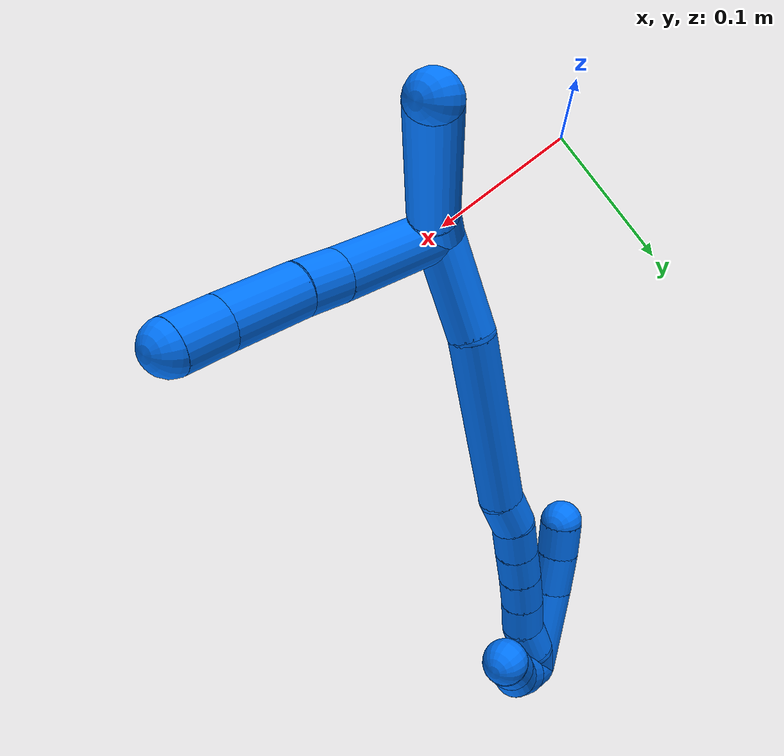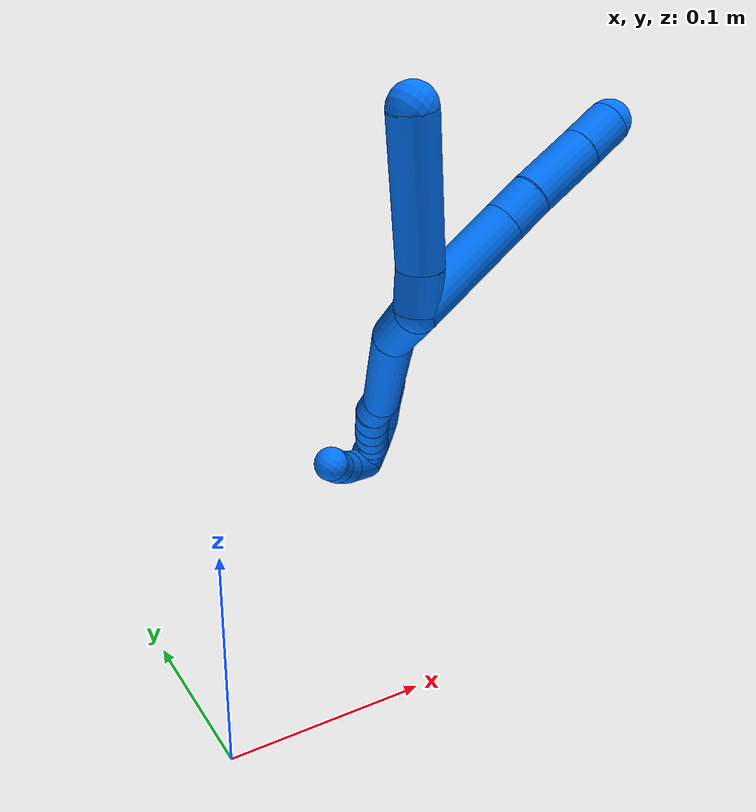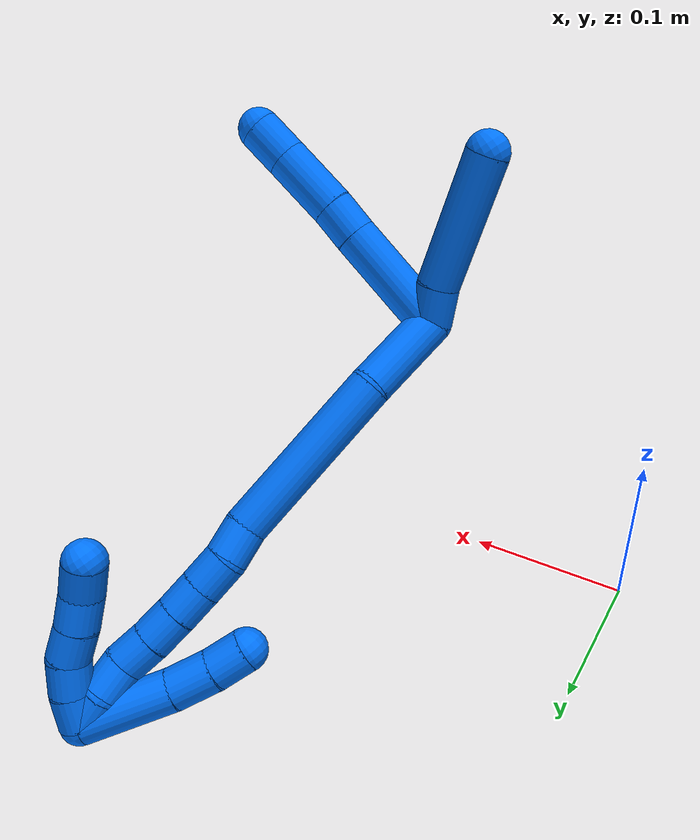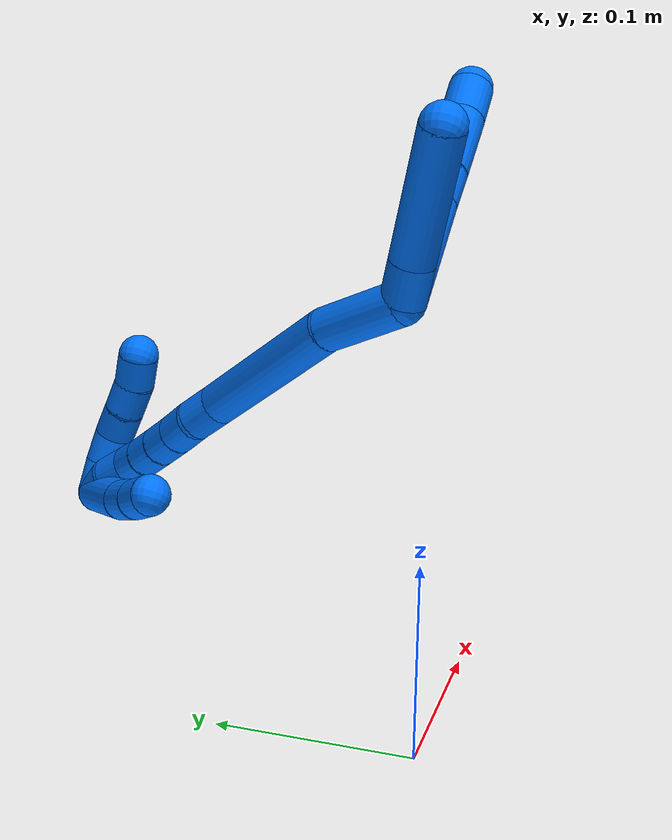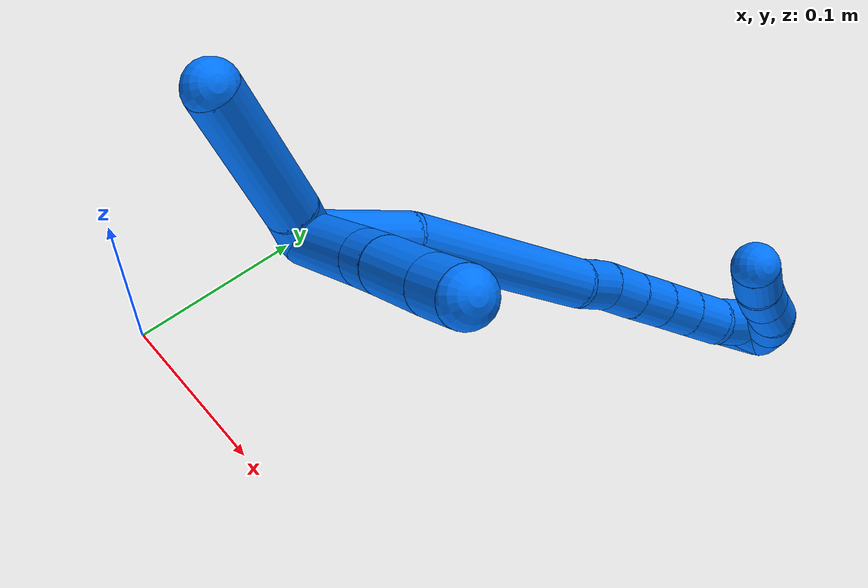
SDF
<sdf version="1.7">
 <world name="default">
  <model name="14">
   <static>0</static>
   <link name="14">
    <collision name="collision-cylinder-e_1_2_8">
     <pose>0.006449 -0.000491 0.03241 0.015137 0.196402 0.001491</pose>
     <geometry><cylinder><radius>0.0125</radius><length>0.066097</length></cylinder></geometry>
     <surface>
      <friction><ode><mu>1.16</mu><mu2>1.16</mu2><slip1>0</slip1><slip2>0</slip2></ode></friction>
      <contact><ode><kp>1e+06</kp><kd>1</kd><max_vel>0</max_vel><min_depth>0.001</min_depth></ode></contact>
     </surface>
    </collision>
    <visual name="visual-cylinder-e_1_2_8">
     <pose>0.006449 -0.000491 0.03241 0.015137 0.196402 0.001491</pose>
     <geometry><cylinder><radius>0.0125</radius><length>0.066097</length></cylinder></geometry>
     <material><ambient>0 0.462745 1 1</ambient></material>
    </visual>
    <collision name="collision-cylinder-e_2_8_9">
     <pose>0.014785 -0.001428 0.075341 0.042482 0.177281 0.003776</pose>
     <geometry><cylinder><radius>0.0125</radius><length>0.021398</length></cylinder></geometry>
     <surface>
      <friction><ode><mu>1.16</mu><mu2>1.16</mu2><slip1>0</slip1><slip2>0</slip2></ode></friction>
      <contact><ode><kp>1e+06</kp><kd>1</kd><max_vel>0</max_vel><min_depth>0.001</min_depth></ode></contact>
     </surface>
    </collision>
    <visual name="visual-cylinder-e_2_8_9">
     <pose>0.014785 -0.001428 0.075341 0.042482 0.177281 0.003776</pose>
     <geometry><cylinder><radius>0.0125</radius><length>0.021398</length></cylinder></geometry>
     <material><ambient>0 0.462745 1 1</ambient></material>
    </visual>
    <collision name="collision-cylinder-e_3_9_10">
     <pose>0.021309 -0.00211 0.104816 0.012351 0.239934 0.001489</pose>
     <geometry><cylinder><radius>0.0125</radius><length>0.039028</length></cylinder></geometry>
     <surface>
      <friction><ode><mu>1.16</mu><mu2>1.16</mu2><slip1>0</slip1><slip2>0</slip2></ode></friction>
      <contact><ode><kp>1e+06</kp><kd>1</kd><max_vel>0</max_vel><min_depth>0.001</min_depth></ode></contact>
     </surface>
    </collision>
    <visual name="visual-cylinder-e_3_9_10">
     <pose>0.021309 -0.00211 0.104816 0.012351 0.239934 0.001489</pose>
     <geometry><cylinder><radius>0.0125</radius><length>0.039028</length></cylinder></geometry>
     <material><ambient>0 0.462745 1 1</ambient></material>
    </visual>
    <collision name="collision-cylinder-e_4_10_6">
     <pose>0.028661 -0.002228 0.135189 -0.010186 0.233337 -0.001194</pose>
     <geometry><cylinder><radius>0.0125</radius><length>0.023477</length></cylinder></geometry>
     <surface>
      <friction><ode><mu>1.16</mu><mu2>1.16</mu2><slip1>0</slip1><slip2>0</slip2></ode></friction>
      <contact><ode><kp>1e+06</kp><kd>1</kd><max_vel>0</max_vel><min_depth>0.001</min_depth></ode></contact>
     </surface>
    </collision>
    <visual name="visual-cylinder-e_4_10_6">
     <pose>0.028661 -0.002228 0.135189 -0.010186 0.233337 -0.001194</pose>
     <geometry><cylinder><radius>0.0125</radius><length>0.023477</length></cylinder></geometry>
     <material><ambient>0 0.462745 1 1</ambient></material>
    </visual>
    <collision name="collision-cylinder-e_1_2_11">
     <pose>-0.007847 -0.00176 0.008193 0.211616 -0.75253 -0.083871</pose>
     <geometry><cylinder><radius>0.0125</radius><length>0.022961</length></cylinder></geometry>
     <surface>
      <friction><ode><mu>1.16</mu><mu2>1.16</mu2><slip1>0</slip1><slip2>0</slip2></ode></friction>
      <contact><ode><kp>1e+06</kp><kd>1</kd><max_vel>0</max_vel><min_depth>0.001</min_depth></ode></contact>
     </surface>
    </collision>
    <visual name="visual-cylinder-e_1_2_11">
     <pose>-0.007847 -0.00176 0.008193 0.211616 -0.75253 -0.083871</pose>
     <geometry><cylinder><radius>0.0125</radius><length>0.022961</length></cylinder></geometry>
     <material><ambient>0 0.462745 1 1</ambient></material>
    </visual>
    <collision name="collision-cylinder-e_2_11_5">
     <pose>-0.045805 -0.010268 0.039441 0.284736 -0.897427 -0.137807</pose>
     <geometry><cylinder><radius>0.0125</radius><length>0.077039</length></cylinder></geometry>
     <surface>
      <friction><ode><mu>1.16</mu><mu2>1.16</mu2><slip1>0</slip1><slip2>0</slip2></ode></friction>
      <contact><ode><kp>1e+06</kp><kd>1</kd><max_vel>0</max_vel><min_depth>0.001</min_depth></ode></contact>
     </surface>
    </collision>
    <visual name="visual-cylinder-e_2_11_5">
     <pose>-0.045805 -0.010268 0.039441 0.284736 -0.897427 -0.137807</pose>
     <geometry><cylinder><radius>0.0125</radius><length>0.077039</length></cylinder></geometry>
     <material><ambient>0 0.462745 1 1</ambient></material>
    </visual>
    <collision name="collision-cylinder-e_1_2_12">
     <pose>0.013767 0.021968 -0.005176 -1.80218 0.54773 -0.681893</pose>
     <geometry><cylinder><radius>0.0125</radius><length>0.052873</length></cylinder></geometry>
     <surface>
      <friction><ode><mu>1.16</mu><mu2>1.16</mu2><slip1>0</slip1><slip2>0</slip2></ode></friction>
      <contact><ode><kp>1e+06</kp><kd>1</kd><max_vel>0</max_vel><min_depth>0.001</min_depth></ode></contact>
     </surface>
    </collision>
    <visual name="visual-cylinder-e_1_2_12">
     <pose>0.013767 0.021968 -0.005176 -1.80218 0.54773 -0.681893</pose>
     <geometry><cylinder><radius>0.0125</radius><length>0.052873</length></cylinder></geometry>
     <material><ambient>0 0.462745 1 1</ambient></material>
    </visual>
    <collision name="collision-cylinder-e_2_12_13">
     <pose>0.063164 0.079866 -0.024232 -1.93945 0.746456 -1.03774</pose>
     <geometry><cylinder><radius>0.0125</radius><length>0.104942</length></cylinder></geometry>
     <surface>
      <friction><ode><mu>1.16</mu><mu2>1.16</mu2><slip1>0</slip1><slip2>0</slip2></ode></friction>
      <contact><ode><kp>1e+06</kp><kd>1</kd><max_vel>0</max_vel><min_depth>0.001</min_depth></ode></contact>
     </surface>
    </collision>
    <visual name="visual-cylinder-e_2_12_13">
     <pose>0.063164 0.079866 -0.024232 -1.93945 0.746456 -1.03774</pose>
     <geometry><cylinder><radius>0.0125</radius><length>0.104942</length></cylinder></geometry>
     <material><ambient>0 0.462745 1 1</ambient></material>
    </visual>
    <collision name="collision-cylinder-e_3_13_14">
     <pose>0.104388 0.12355 -0.042432 -2.07903 0.562438 -0.913786</pose>
     <geometry><cylinder><radius>0.0125</radius><length>0.020981</length></cylinder></geometry>
     <surface>
      <friction><ode><mu>1.16</mu><mu2>1.16</mu2><slip1>0</slip1><slip2>0</slip2></ode></friction>
      <contact><ode><kp>1e+06</kp><kd>1</kd><max_vel>0</max_vel><min_depth>0.001</min_depth></ode></contact>
     </surface>
    </collision>
    <visual name="visual-cylinder-e_3_13_14">
     <pose>0.104388 0.12355 -0.042432 -2.07903 0.562438 -0.913786</pose>
     <geometry><cylinder><radius>0.0125</radius><length>0.020981</length></cylinder></geometry>
     <material><ambient>0 0.462745 1 1</ambient></material>
    </visual>
    <collision name="collision-cylinder-e_4_14_15">
     <pose>0.117353 0.13803 -0.049522 -1.96165 0.791952 -1.11636</pose>
     <geometry><cylinder><radius>0.0125</radius><length>0.020714</length></cylinder></geometry>
     <surface>
      <friction><ode><mu>1.16</mu><mu2>1.16</mu2><slip1>0</slip1><slip2>0</slip2></ode></friction>
      <contact><ode><kp>1e+06</kp><kd>1</kd><max_vel>0</max_vel><min_depth>0.001</min_depth></ode></contact>
     </surface>
    </collision>
    <visual name="visual-cylinder-e_4_14_15">
     <pose>0.117353 0.13803 -0.049522 -1.96165 0.791952 -1.11636</pose>
     <geometry><cylinder><radius>0.0125</radius><length>0.020714</length></cylinder></geometry>
     <material><ambient>0 0.462745 1 1</ambient></material>
    </visual>
    <collision name="collision-cylinder-e_5_15_16">
     <pose>0.131723 0.151445 -0.054815 -1.93132 0.774806 -1.06589</pose>
     <geometry><cylinder><radius>0.0125</radius><length>0.020008</length></cylinder></geometry>
     <surface>
      <friction><ode><mu>1.16</mu><mu2>1.16</mu2><slip1>0</slip1><slip2>0</slip2></ode></friction>
      <contact><ode><kp>1e+06</kp><kd>1</kd><max_vel>0</max_vel><min_depth>0.001</min_depth></ode></contact>
     </surface>
    </collision>
    <visual name="visual-cylinder-e_5_15_16">
     <pose>0.131723 0.151445 -0.054815 -1.93132 0.774806 -1.06589</pose>
     <geometry><cylinder><radius>0.0125</radius><length>0.020008</length></cylinder></geometry>
     <material><ambient>0 0.462745 1 1</ambient></material>
    </visual>
    <collision name="collision-cylinder-e_6_16_17">
     <pose>0.145995 0.164864 -0.059562 -1.89006 0.798316 -1.05668</pose>
     <geometry><cylinder><radius>0.0125</radius><length>0.020314</length></cylinder></geometry>
     <surface>
      <friction><ode><mu>1.16</mu><mu2>1.16</mu2><slip1>0</slip1><slip2>0</slip2></ode></friction>
      <contact><ode><kp>1e+06</kp><kd>1</kd><max_vel>0</max_vel><min_depth>0.001</min_depth></ode></contact>
     </surface>
    </collision>
    <visual name="visual-cylinder-e_6_16_17">
     <pose>0.145995 0.164864 -0.059562 -1.89006 0.798316 -1.05668</pose>
     <geometry><cylinder><radius>0.0125</radius><length>0.020314</length></cylinder></geometry>
     <material><ambient>0 0.462745 1 1</ambient></material>
    </visual>
    <collision name="collision-cylinder-e_7_17_18">
     <pose>0.16059 0.178261 -0.063239 -1.78521 0.820545 -0.990057</pose>
     <geometry><cylinder><radius>0.0125</radius><length>0.020014</length></cylinder></geometry>
     <surface>
      <friction><ode><mu>1.16</mu><mu2>1.16</mu2><slip1>0</slip1><slip2>0</slip2></ode></friction>
      <contact><ode><kp>1e+06</kp><kd>1</kd><max_vel>0</max_vel><min_depth>0.001</min_depth></ode></contact>
     </surface>
    </collision>
    <visual name="visual-cylinder-e_7_17_18">
     <pose>0.16059 0.178261 -0.063239 -1.78521 0.820545 -0.990057</pose>
     <geometry><cylinder><radius>0.0125</radius><length>0.020014</length></cylinder></geometry>
     <material><ambient>0 0.462745 1 1</ambient></material>
    </visual>
    <collision name="collision-cylinder-e_8_18_19">
     <pose>0.173404 0.192622 -0.068008 -1.97788 0.58036 -0.852238</pose>
     <geometry><cylinder><radius>0.0125</radius><length>0.020039</length></cylinder></geometry>
     <surface>
      <friction><ode><mu>1.16</mu><mu2>1.16</mu2><slip1>0</slip1><slip2>0</slip2></ode></friction>
      <contact><ode><kp>1e+06</kp><kd>1</kd><max_vel>0</max_vel><min_depth>0.001</min_depth></ode></contact>
     </surface>
    </collision>
    <visual name="visual-cylinder-e_8_18_19">
     <pose>0.173404 0.192622 -0.068008 -1.97788 0.58036 -0.852238</pose>
     <geometry><cylinder><radius>0.0125</radius><length>0.020039</length></cylinder></geometry>
     <material><ambient>0 0.462745 1 1</ambient></material>
    </visual>
    <collision name="collision-cylinder-e_9_19_1">
     <pose>0.186298 0.205928 -0.075186 -2.17339 0.826744 -1.39049</pose>
     <geometry><cylinder><radius>0.0125</radius><length>0.020116</length></cylinder></geometry>
     <surface>
      <friction><ode><mu>1.16</mu><mu2>1.16</mu2><slip1>0</slip1><slip2>0</slip2></ode></friction>
      <contact><ode><kp>1e+06</kp><kd>1</kd><max_vel>0</max_vel><min_depth>0.001</min_depth></ode></contact>
     </surface>
    </collision>
    <visual name="visual-cylinder-e_9_19_1">
     <pose>0.186298 0.205928 -0.075186 -2.17339 0.826744 -1.39049</pose>
     <geometry><cylinder><radius>0.0125</radius><length>0.020116</length></cylinder></geometry>
     <material><ambient>0 0.462745 1 1</ambient></material>
    </visual>
    <collision name="collision-cylinder-e_1_1_20">
     <pose>0.190173 0.210335 -0.069767 0.129225 -0.360192 -0.02356</pose>
     <geometry><cylinder><radius>0.0125</radius><length>0.02</length></cylinder></geometry>
     <surface>
      <friction><ode><mu>1.16</mu><mu2>1.16</mu2><slip1>0</slip1><slip2>0</slip2></ode></friction>
      <contact><ode><kp>1e+06</kp><kd>1</kd><max_vel>0</max_vel><min_depth>0.001</min_depth></ode></contact>
     </surface>
    </collision>
    <visual name="visual-cylinder-e_1_1_20">
     <pose>0.190173 0.210335 -0.069767 0.129225 -0.360192 -0.02356</pose>
     <geometry><cylinder><radius>0.0125</radius><length>0.02</length></cylinder></geometry>
     <material><ambient>0 0.462745 1 1</ambient></material>
    </visual>
    <collision name="collision-cylinder-e_2_20_21">
     <pose>0.181831 0.206854 -0.052024 0.262597 -0.502695 -0.067793</pose>
     <geometry><cylinder><radius>0.0125</radius><length>0.02</length></cylinder></geometry>
     <surface>
      <friction><ode><mu>1.16</mu><mu2>1.16</mu2><slip1>0</slip1><slip2>0</slip2></ode></friction>
      <contact><ode><kp>1e+06</kp><kd>1</kd><max_vel>0</max_vel><min_depth>0.001</min_depth></ode></contact>
     </surface>
    </collision>
    <visual name="visual-cylinder-e_2_20_21">
     <pose>0.181831 0.206854 -0.052024 0.262597 -0.502695 -0.067793</pose>
     <geometry><cylinder><radius>0.0125</radius><length>0.02</length></cylinder></geometry>
     <material><ambient>0 0.462745 1 1</ambient></material>
    </visual>
    <collision name="collision-cylinder-e_3_21_22">
     <pose>0.17017 0.200957 -0.037233 0.519857 -0.753629 -0.209709</pose>
     <geometry><cylinder><radius>0.0125</radius><length>0.02</length></cylinder></geometry>
     <surface>
      <friction><ode><mu>1.16</mu><mu2>1.16</mu2><slip1>0</slip1><slip2>0</slip2></ode></friction>
      <contact><ode><kp>1e+06</kp><kd>1</kd><max_vel>0</max_vel><min_depth>0.001</min_depth></ode></contact>
     </surface>
    </collision>
    <visual name="visual-cylinder-e_3_21_22">
     <pose>0.17017 0.200957 -0.037233 0.519857 -0.753629 -0.209709</pose>
     <geometry><cylinder><radius>0.0125</radius><length>0.02</length></cylinder></geometry>
     <material><ambient>0 0.462745 1 1</ambient></material>
    </visual>
    <collision name="collision-cylinder-e_4_22_23">
     <pose>0.157051 0.194042 -0.023849 0.436665 -0.67846 -0.156264</pose>
     <geometry><cylinder><radius>0.0125</radius><length>0.02</length></cylinder></geometry>
     <surface>
      <friction><ode><mu>1.16</mu><mu2>1.16</mu2><slip1>0</slip1><slip2>0</slip2></ode></friction>
      <contact><ode><kp>1e+06</kp><kd>1</kd><max_vel>0</max_vel><min_depth>0.001</min_depth></ode></contact>
     </surface>
    </collision>
    <visual name="visual-cylinder-e_4_22_23">
     <pose>0.157051 0.194042 -0.023849 0.436665 -0.67846 -0.156264</pose>
     <geometry><cylinder><radius>0.0125</radius><length>0.02</length></cylinder></geometry>
     <material><ambient>0 0.462745 1 1</ambient></material>
    </visual>
    <collision name="collision-cylinder-e_5_23_4">
     <pose>0.143717 0.189178 -0.009887 0.223714 -0.783577 -0.092748</pose>
     <geometry><cylinder><radius>0.0125</radius><length>0.02</length></cylinder></geometry>
     <surface>
      <friction><ode><mu>1.16</mu><mu2>1.16</mu2><slip1>0</slip1><slip2>0</slip2></ode></friction>
      <contact><ode><kp>1e+06</kp><kd>1</kd><max_vel>0</max_vel><min_depth>0.001</min_depth></ode></contact>
     </surface>
    </collision>
    <visual name="visual-cylinder-e_5_23_4">
     <pose>0.143717 0.189178 -0.009887 0.223714 -0.783577 -0.092748</pose>
     <geometry><cylinder><radius>0.0125</radius><length>0.02</length></cylinder></geometry>
     <material><ambient>0 0.462745 1 1</ambient></material>
    </visual>
    <collision name="collision-cylinder-e_1_1_24">
     <pose>0.173784 0.19471 -0.085076 1.91474 -0.83924 -1.12961</pose>
     <geometry><cylinder><radius>0.0125</radius><length>0.053523</length></cylinder></geometry>
     <surface>
      <friction><ode><mu>1.16</mu><mu2>1.16</mu2><slip1>0</slip1><slip2>0</slip2></ode></friction>
      <contact><ode><kp>1e+06</kp><kd>1</kd><max_vel>0</max_vel><min_depth>0.001</min_depth></ode></contact>
     </surface>
    </collision>
    <visual name="visual-cylinder-e_1_1_24">
     <pose>0.173784 0.19471 -0.085076 1.91474 -0.83924 -1.12961</pose>
     <geometry><cylinder><radius>0.0125</radius><length>0.053523</length></cylinder></geometry>
     <material><ambient>0 0.462745 1 1</ambient></material>
    </visual>
    <collision name="collision-cylinder-e_2_24_25">
     <pose>0.144038 0.169904 -0.09256 1.75135 -0.881189 -1.02913</pose>
     <geometry><cylinder><radius>0.0125</radius><length>0.025487</length></cylinder></geometry>
     <surface>
      <friction><ode><mu>1.16</mu><mu2>1.16</mu2><slip1>0</slip1><slip2>0</slip2></ode></friction>
      <contact><ode><kp>1e+06</kp><kd>1</kd><max_vel>0</max_vel><min_depth>0.001</min_depth></ode></contact>
     </surface>
    </collision>
    <visual name="visual-cylinder-e_2_24_25">
     <pose>0.144038 0.169904 -0.09256 1.75135 -0.881189 -1.02913</pose>
     <geometry><cylinder><radius>0.0125</radius><length>0.025487</length></cylinder></geometry>
     <material><ambient>0 0.462745 1 1</ambient></material>
    </visual>
    <collision name="collision-cylinder-e_3_25_3">
     <pose>0.126183 0.155163 -0.094135 1.58833 -0.870195 -0.883672</pose>
     <geometry><cylinder><radius>0.0125</radius><length>0.02099</length></cylinder></geometry>
     <surface>
      <friction><ode><mu>1.16</mu><mu2>1.16</mu2><slip1>0</slip1><slip2>0</slip2></ode></friction>
      <contact><ode><kp>1e+06</kp><kd>1</kd><max_vel>0</max_vel><min_depth>0.001</min_depth></ode></contact>
     </surface>
    </collision>
    <visual name="visual-cylinder-e_3_25_3">
     <pose>0.126183 0.155163 -0.094135 1.58833 -0.870195 -0.883672</pose>
     <geometry><cylinder><radius>0.0125</radius><length>0.02099</length></cylinder></geometry>
     <material><ambient>0 0.462745 1 1</ambient></material>
    </visual>
    <collision name="collision-sphere-3">
     <pose>0.11816 0.148398 -0.094253 0 -0 0</pose>
     <geometry><sphere><radius>0.0125</radius></sphere></geometry>
     <surface>
      <friction><ode><mu>1.16</mu><mu2>1.16</mu2><slip1>0</slip1><slip2>0</slip2></ode></friction>
      <contact><ode><kp>1e+06</kp><kd>1</kd><max_vel>0</max_vel><min_depth>0.001</min_depth></ode></contact>
     </surface>
    </collision>
    <visual name="visual-sphere-3">
     <pose>0.11816 0.148398 -0.094253 0 -0 0</pose>
     <geometry><sphere><radius>0.0125</radius></sphere></geometry>
     <material><ambient>0 0.462745 1 1</ambient></material>
    </visual>
    <collision name="collision-sphere-25">
     <pose>0.134207 0.161928 -0.094016 0 -0 0</pose>
     <geometry><sphere><radius>0.0125</radius></sphere></geometry>
     <surface>
      <friction><ode><mu>1.16</mu><mu2>1.16</mu2><slip1>0</slip1><slip2>0</slip2></ode></friction>
      <contact><ode><kp>1e+06</kp><kd>1</kd><max_vel>0</max_vel><min_depth>0.001</min_depth></ode></contact>
     </surface>
    </collision>
    <visual name="visual-sphere-25">
     <pose>0.134207 0.161928 -0.094016 0 -0 0</pose>
     <geometry><sphere><radius>0.0125</radius></sphere></geometry>
     <material><ambient>0 0.462745 1 1</ambient></material>
    </visual>
    <collision name="collision-sphere-24">
     <pose>0.153869 0.17788 -0.091104 0 -0 0</pose>
     <geometry><sphere><radius>0.0125</radius></sphere></geometry>
     <surface>
      <friction><ode><mu>1.16</mu><mu2>1.16</mu2><slip1>0</slip1><slip2>0</slip2></ode></friction>
      <contact><ode><kp>1e+06</kp><kd>1</kd><max_vel>0</max_vel><min_depth>0.001</min_depth></ode></contact>
     </surface>
    </collision>
    <visual name="visual-sphere-24">
     <pose>0.153869 0.17788 -0.091104 0 -0 0</pose>
     <geometry><sphere><radius>0.0125</radius></sphere></geometry>
     <material><ambient>0 0.462745 1 1</ambient></material>
    </visual>
    <collision name="collision-sphere-4">
     <pose>0.136659 0.187606 -0.00298 0 -0 0</pose>
     <geometry><sphere><radius>0.0125</radius></sphere></geometry>
     <surface>
      <friction><ode><mu>1.16</mu><mu2>1.16</mu2><slip1>0</slip1><slip2>0</slip2></ode></friction>
      <contact><ode><kp>1e+06</kp><kd>1</kd><max_vel>0</max_vel><min_depth>0.001</min_depth></ode></contact>
     </surface>
    </collision>
    <visual name="visual-sphere-4">
     <pose>0.136659 0.187606 -0.00298 0 -0 0</pose>
     <geometry><sphere><radius>0.0125</radius></sphere></geometry>
     <material><ambient>0 0.462745 1 1</ambient></material>
    </visual>
    <collision name="collision-sphere-23">
     <pose>0.150775 0.190749 -0.016794 0 -0 0</pose>
     <geometry><sphere><radius>0.0125</radius></sphere></geometry>
     <surface>
      <friction><ode><mu>1.16</mu><mu2>1.16</mu2><slip1>0</slip1><slip2>0</slip2></ode></friction>
      <contact><ode><kp>1e+06</kp><kd>1</kd><max_vel>0</max_vel><min_depth>0.001</min_depth></ode></contact>
     </surface>
    </collision>
    <visual name="visual-sphere-23">
     <pose>0.150775 0.190749 -0.016794 0 -0 0</pose>
     <geometry><sphere><radius>0.0125</radius></sphere></geometry>
     <material><ambient>0 0.462745 1 1</ambient></material>
    </visual>
    <collision name="collision-sphere-22">
     <pose>0.163327 0.197334 -0.030904 0 -0 0</pose>
     <geometry><sphere><radius>0.0125</radius></sphere></geometry>
     <surface>
      <friction><ode><mu>1.16</mu><mu2>1.16</mu2><slip1>0</slip1><slip2>0</slip2></ode></friction>
      <contact><ode><kp>1e+06</kp><kd>1</kd><max_vel>0</max_vel><min_depth>0.001</min_depth></ode></contact>
     </surface>
    </collision>
    <visual name="visual-sphere-22">
     <pose>0.163327 0.197334 -0.030904 0 -0 0</pose>
     <geometry><sphere><radius>0.0125</radius></sphere></geometry>
     <material><ambient>0 0.462745 1 1</ambient></material>
    </visual>
    <collision name="collision-sphere-21">
     <pose>0.177013 0.204579 -0.043562 0 -0 0</pose>
     <geometry><sphere><radius>0.0125</radius></sphere></geometry>
     <surface>
      <friction><ode><mu>1.16</mu><mu2>1.16</mu2><slip1>0</slip1><slip2>0</slip2></ode></friction>
      <contact><ode><kp>1e+06</kp><kd>1</kd><max_vel>0</max_vel><min_depth>0.001</min_depth></ode></contact>
     </surface>
    </collision>
    <visual name="visual-sphere-21">
     <pose>0.177013 0.204579 -0.043562 0 -0 0</pose>
     <geometry><sphere><radius>0.0125</radius></sphere></geometry>
     <material><ambient>0 0.462745 1 1</ambient></material>
    </visual>
    <collision name="collision-sphere-20">
     <pose>0.186649 0.209129 -0.060487 0 -0 0</pose>
     <geometry><sphere><radius>0.0125</radius></sphere></geometry>
     <surface>
      <friction><ode><mu>1.16</mu><mu2>1.16</mu2><slip1>0</slip1><slip2>0</slip2></ode></friction>
      <contact><ode><kp>1e+06</kp><kd>1</kd><max_vel>0</max_vel><min_depth>0.001</min_depth></ode></contact>
     </surface>
    </collision>
    <visual name="visual-sphere-20">
     <pose>0.186649 0.209129 -0.060487 0 -0 0</pose>
     <geometry><sphere><radius>0.0125</radius></sphere></geometry>
     <material><ambient>0 0.462745 1 1</ambient></material>
    </visual>
    <collision name="collision-sphere-11">
     <pose>-0.015694 -0.00352 0.016387 0 -0 0</pose>
     <geometry><sphere><radius>0.0125</radius></sphere></geometry>
     <surface>
      <friction><ode><mu>1.16</mu><mu2>1.16</mu2><slip1>0</slip1><slip2>0</slip2></ode></friction>
      <contact><ode><kp>1e+06</kp><kd>1</kd><max_vel>0</max_vel><min_depth>0.001</min_depth></ode></contact>
     </surface>
    </collision>
    <visual name="visual-sphere-11">
     <pose>-0.015694 -0.00352 0.016387 0 -0 0</pose>
     <geometry><sphere><radius>0.0125</radius></sphere></geometry>
     <material><ambient>0 0.462745 1 1</ambient></material>
    </visual>
    <collision name="collision-sphere-6">
     <pose>0.031375 -0.002111 0.146609 0 -0 0</pose>
     <geometry><sphere><radius>0.0125</radius></sphere></geometry>
     <surface>
      <friction><ode><mu>1.16</mu><mu2>1.16</mu2><slip1>0</slip1><slip2>0</slip2></ode></friction>
      <contact><ode><kp>1e+06</kp><kd>1</kd><max_vel>0</max_vel><min_depth>0.001</min_depth></ode></contact>
     </surface>
    </collision>
    <visual name="visual-sphere-6">
     <pose>0.031375 -0.002111 0.146609 0 -0 0</pose>
     <geometry><sphere><radius>0.0125</radius></sphere></geometry>
     <material><ambient>0 0.462745 1 1</ambient></material>
    </visual>
    <collision name="collision-sphere-10">
     <pose>0.025946 -0.002344 0.123769 0 -0 0</pose>
     <geometry><sphere><radius>0.0125</radius></sphere></geometry>
     <surface>
      <friction><ode><mu>1.16</mu><mu2>1.16</mu2><slip1>0</slip1><slip2>0</slip2></ode></friction>
      <contact><ode><kp>1e+06</kp><kd>1</kd><max_vel>0</max_vel><min_depth>0.001</min_depth></ode></contact>
     </surface>
    </collision>
    <visual name="visual-sphere-10">
     <pose>0.025946 -0.002344 0.123769 0 -0 0</pose>
     <geometry><sphere><radius>0.0125</radius></sphere></geometry>
     <material><ambient>0 0.462745 1 1</ambient></material>
    </visual>
    <collision name="collision-sphere-9">
     <pose>0.016672 -0.001876 0.085863 0 -0 0</pose>
     <geometry><sphere><radius>0.0125</radius></sphere></geometry>
     <surface>
      <friction><ode><mu>1.16</mu><mu2>1.16</mu2><slip1>0</slip1><slip2>0</slip2></ode></friction>
      <contact><ode><kp>1e+06</kp><kd>1</kd><max_vel>0</max_vel><min_depth>0.001</min_depth></ode></contact>
     </surface>
    </collision>
    <visual name="visual-sphere-9">
     <pose>0.016672 -0.001876 0.085863 0 -0 0</pose>
     <geometry><sphere><radius>0.0125</radius></sphere></geometry>
     <material><ambient>0 0.462745 1 1</ambient></material>
    </visual>
    <collision name="collision-sphere-2">
     <geometry><sphere><radius>0.0125</radius></sphere></geometry>
     <surface>
      <friction><ode><mu>1.16</mu><mu2>1.16</mu2><slip1>0</slip1><slip2>0</slip2></ode></friction>
      <contact><ode><kp>1e+06</kp><kd>1</kd><max_vel>0</max_vel><min_depth>0.001</min_depth></ode></contact>
     </surface>
    </collision>
    <visual name="visual-sphere-2">
     <geometry><sphere><radius>0.0125</radius></sphere></geometry>
     <material><ambient>0 0.462745 1 1</ambient></material>
    </visual>
    <collision name="collision-sphere-19">
     <pose>0.178898 0.200316 -0.071325 0 -0 0</pose>
     <geometry><sphere><radius>0.0125</radius></sphere></geometry>
     <surface>
      <friction><ode><mu>1.16</mu><mu2>1.16</mu2><slip1>0</slip1><slip2>0</slip2></ode></friction>
      <contact><ode><kp>1e+06</kp><kd>1</kd><max_vel>0</max_vel><min_depth>0.001</min_depth></ode></contact>
     </surface>
    </collision>
    <visual name="visual-sphere-19">
     <pose>0.178898 0.200316 -0.071325 0 -0 0</pose>
     <geometry><sphere><radius>0.0125</radius></sphere></geometry>
     <material><ambient>0 0.462745 1 1</ambient></material>
    </visual>
    <collision name="collision-sphere-8">
     <pose>0.012898 -0.000981 0.064819 0 -0 0</pose>
     <geometry><sphere><radius>0.0125</radius></sphere></geometry>
     <surface>
      <friction><ode><mu>1.16</mu><mu2>1.16</mu2><slip1>0</slip1><slip2>0</slip2></ode></friction>
      <contact><ode><kp>1e+06</kp><kd>1</kd><max_vel>0</max_vel><min_depth>0.001</min_depth></ode></contact>
     </surface>
    </collision>
    <visual name="visual-sphere-8">
     <pose>0.012898 -0.000981 0.064819 0 -0 0</pose>
     <geometry><sphere><radius>0.0125</radius></sphere></geometry>
     <material><ambient>0 0.462745 1 1</ambient></material>
    </visual>
    <collision name="collision-sphere-5">
     <pose>-0.075917 -0.017016 0.062496 0 -0 0</pose>
     <geometry><sphere><radius>0.0125</radius></sphere></geometry>
     <surface>
      <friction><ode><mu>1.16</mu><mu2>1.16</mu2><slip1>0</slip1><slip2>0</slip2></ode></friction>
      <contact><ode><kp>1e+06</kp><kd>1</kd><max_vel>0</max_vel><min_depth>0.001</min_depth></ode></contact>
     </surface>
    </collision>
    <visual name="visual-sphere-5">
     <pose>-0.075917 -0.017016 0.062496 0 -0 0</pose>
     <geometry><sphere><radius>0.0125</radius></sphere></geometry>
     <material><ambient>0 0.462745 1 1</ambient></material>
    </visual>
    <collision name="collision-sphere-12">
     <pose>0.027534 0.043935 -0.010351 0 -0 0</pose>
     <geometry><sphere><radius>0.0125</radius></sphere></geometry>
     <surface>
      <friction><ode><mu>1.16</mu><mu2>1.16</mu2><slip1>0</slip1><slip2>0</slip2></ode></friction>
      <contact><ode><kp>1e+06</kp><kd>1</kd><max_vel>0</max_vel><min_depth>0.001</min_depth></ode></contact>
     </surface>
    </collision>
    <visual name="visual-sphere-12">
     <pose>0.027534 0.043935 -0.010351 0 -0 0</pose>
     <geometry><sphere><radius>0.0125</radius></sphere></geometry>
     <material><ambient>0 0.462745 1 1</ambient></material>
    </visual>
    <collision name="collision-sphere-13">
     <pose>0.098794 0.115797 -0.038113 0 -0 0</pose>
     <geometry><sphere><radius>0.0125</radius></sphere></geometry>
     <surface>
      <friction><ode><mu>1.16</mu><mu2>1.16</mu2><slip1>0</slip1><slip2>0</slip2></ode></friction>
      <contact><ode><kp>1e+06</kp><kd>1</kd><max_vel>0</max_vel><min_depth>0.001</min_depth></ode></contact>
     </surface>
    </collision>
    <visual name="visual-sphere-13">
     <pose>0.098794 0.115797 -0.038113 0 -0 0</pose>
     <geometry><sphere><radius>0.0125</radius></sphere></geometry>
     <material><ambient>0 0.462745 1 1</ambient></material>
    </visual>
    <collision name="collision-sphere-14">
     <pose>0.109982 0.131303 -0.04675 0 -0 0</pose>
     <geometry><sphere><radius>0.0125</radius></sphere></geometry>
     <surface>
      <friction><ode><mu>1.16</mu><mu2>1.16</mu2><slip1>0</slip1><slip2>0</slip2></ode></friction>
      <contact><ode><kp>1e+06</kp><kd>1</kd><max_vel>0</max_vel><min_depth>0.001</min_depth></ode></contact>
     </surface>
    </collision>
    <visual name="visual-sphere-14">
     <pose>0.109982 0.131303 -0.04675 0 -0 0</pose>
     <geometry><sphere><radius>0.0125</radius></sphere></geometry>
     <material><ambient>0 0.462745 1 1</ambient></material>
    </visual>
    <collision name="collision-sphere-15">
     <pose>0.124724 0.144756 -0.052294 0 -0 0</pose>
     <geometry><sphere><radius>0.0125</radius></sphere></geometry>
     <surface>
      <friction><ode><mu>1.16</mu><mu2>1.16</mu2><slip1>0</slip1><slip2>0</slip2></ode></friction>
      <contact><ode><kp>1e+06</kp><kd>1</kd><max_vel>0</max_vel><min_depth>0.001</min_depth></ode></contact>
     </surface>
    </collision>
    <visual name="visual-sphere-15">
     <pose>0.124724 0.144756 -0.052294 0 -0 0</pose>
     <geometry><sphere><radius>0.0125</radius></sphere></geometry>
     <material><ambient>0 0.462745 1 1</ambient></material>
    </visual>
    <collision name="collision-sphere-16">
     <pose>0.138721 0.158134 -0.057337 0 -0 0</pose>
     <geometry><sphere><radius>0.0125</radius></sphere></geometry>
     <surface>
      <friction><ode><mu>1.16</mu><mu2>1.16</mu2><slip1>0</slip1><slip2>0</slip2></ode></friction>
      <contact><ode><kp>1e+06</kp><kd>1</kd><max_vel>0</max_vel><min_depth>0.001</min_depth></ode></contact>
     </surface>
    </collision>
    <visual name="visual-sphere-16">
     <pose>0.138721 0.158134 -0.057337 0 -0 0</pose>
     <geometry><sphere><radius>0.0125</radius></sphere></geometry>
     <material><ambient>0 0.462745 1 1</ambient></material>
    </visual>
    <collision name="collision-sphere-17">
     <pose>0.15327 0.171595 -0.061787 0 -0 0</pose>
     <geometry><sphere><radius>0.0125</radius></sphere></geometry>
     <surface>
      <friction><ode><mu>1.16</mu><mu2>1.16</mu2><slip1>0</slip1><slip2>0</slip2></ode></friction>
      <contact><ode><kp>1e+06</kp><kd>1</kd><max_vel>0</max_vel><min_depth>0.001</min_depth></ode></contact>
     </surface>
    </collision>
    <visual name="visual-sphere-17">
     <pose>0.15327 0.171595 -0.061787 0 -0 0</pose>
     <geometry><sphere><radius>0.0125</radius></sphere></geometry>
     <material><ambient>0 0.462745 1 1</ambient></material>
    </visual>
    <collision name="collision-sphere-18">
     <pose>0.16791 0.184928 -0.06469 0 -0 0</pose>
     <geometry><sphere><radius>0.0125</radius></sphere></geometry>
     <surface>
      <friction><ode><mu>1.16</mu><mu2>1.16</mu2><slip1>0</slip1><slip2>0</slip2></ode></friction>
      <contact><ode><kp>1e+06</kp><kd>1</kd><max_vel>0</max_vel><min_depth>0.001</min_depth></ode></contact>
     </surface>
    </collision>
    <visual name="visual-sphere-18">
     <pose>0.16791 0.184928 -0.06469 0 -0 0</pose>
     <geometry><sphere><radius>0.0125</radius></sphere></geometry>
     <material><ambient>0 0.462745 1 1</ambient></material>
    </visual>
    <collision name="collision-sphere-1">
     <pose>0.193698 0.211541 -0.079047 0 -0 0</pose>
     <geometry><sphere><radius>0.0125</radius></sphere></geometry>
     <surface>
      <friction><ode><mu>1.16</mu><mu2>1.16</mu2><slip1>0</slip1><slip2>0</slip2></ode></friction>
      <contact><ode><kp>1e+06</kp><kd>1</kd><max_vel>0</max_vel><min_depth>0.001</min_depth></ode></contact>
     </surface>
    </collision>
    <visual name="visual-sphere-1">
     <pose>0.193698 0.211541 -0.079047 0 -0 0</pose>
     <geometry><sphere><radius>0.0125</radius></sphere></geometry>
     <material><ambient>0 0.462745 1 1</ambient></material>
    </visual>
    <inertial>
     <pose>0.078711 0.093267 -0.012904 0 -0 0</pose>
     <mass>0.75</mass>
     <inertia><ixx>3.3e-05</ixx><ixy>0</ixy><ixz>0</ixz><iyy>5.3e-05</iyy><iyz>0</iyz><izz>-9e-05</izz></inertia>
    </inertial>
   </link>
   <pose>0.126856 0.042353 0.185859 0.066902 0.69481 0.041238</pose>
  </model>
 </world>
</sdf>
